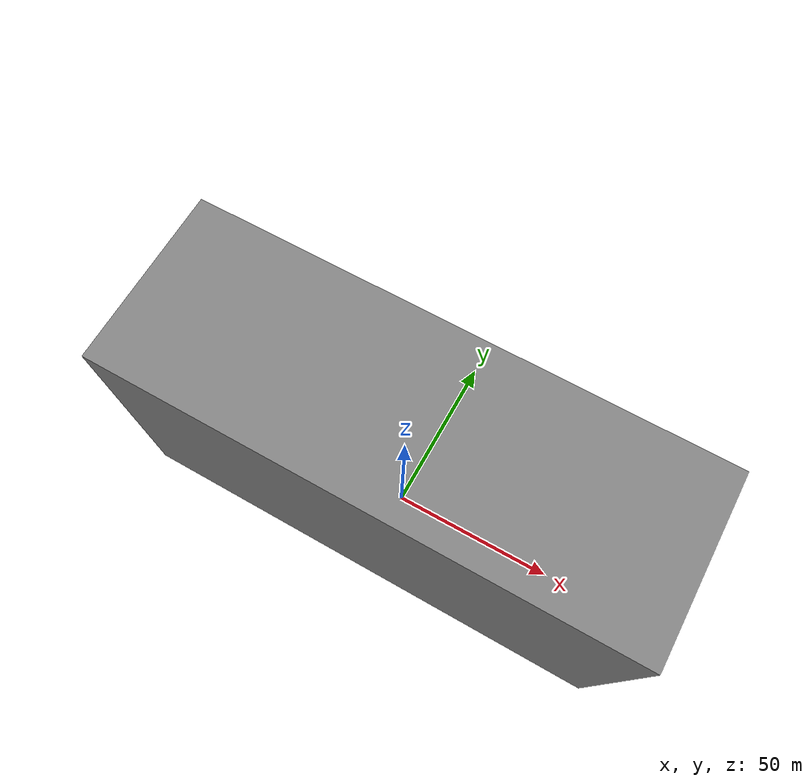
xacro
<?xml version="1.0"?>
<robot name="sun_finger_v4" xmlns:xacro="http://www.ros.org/wiki/xacro">

  <!-- Import finger macro -->
  <xacro:include filename="$(find sun_tactile_simulation)/urdf/wsg50_with_sunfinger.xacro" />

  <xacro:wsg50_with_sunfinger
    prefix=''
    base_link="base_link"
    scale="1.0"
    finger_version="v4"
    mimic_joints="true"
    create_sensor_link="true"
    create_grasp_link="true"
  />

</robot>

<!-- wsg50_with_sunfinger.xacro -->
<robot xmlns:xacro="http://www.ros.org/wiki/xacro">

<!-- include WSG50 macro -->
<xacro:include filename="$(find sun_wsg50_simulation)/urdf/wsg50.xacro" />

<xacro:macro
    name="wsg50_with_sunfinger"
    params="
        prefix:=''
        base_link:=base_link
        scale:=1.0
        finger_version:=v4
        mimic_joints:=true
        create_sensor_link:=true
        create_grasp_link:=true
        rotate_grasp_link:=false
        "
>

    <!-- prefix finger left/right -->
    <xacro:property name="prefix_finger_left" value="left/"/>
    <xacro:property name="prefix_finger_right" value="right/"/>
    <xacro:property name="finger_flange_link" value="finger_flange_link"/>
    <xacro:property name="finger_flange_left_link" value="${finger_flange_link}"/>
    <xacro:property name="finger_flange_right_link" value="${finger_flange_link}"/>
    <xacro:property name="sun_finger_link" value="sun_finger_link"/>

    <xacro:if value="${finger_version=='v3'}">
        <xacro:property name="grasp_dz" value="0.191486403"/>
    </xacro:if>
    <xacro:if value="${finger_version=='v3N'}">
        <xacro:property name="grasp_dz" value="0.1830145968018"/>
    </xacro:if>
    <xacro:if value="${finger_version=='v4'}">
        <xacro:property name="grasp_dz" value="0.183356"/>
    </xacro:if>

    <!-- wsg50 without fingers -->
    <!--
        finger_flange_left_link:=default
        finger_flange_right_link:=default
    -->
    <xacro:wsg50
        prefix="${prefix}"
        scale="${scale}"
        base_link="${base_link}"
        mimic_joints="${mimic_joints}"
        prefix_finger_left="${prefix_finger_left}"
        finger_flange_left_link="${finger_flange_left_link}"
        prefix_finger_right="${prefix_finger_right}"
        finger_flange_right_link="${finger_flange_right_link}"
    />

    <xacro:macro
        name="sun_finger_with_fixed_joint"
        params="
            prefix:=''
            parent_link:=finger_flange_link
            joint_name:=finger_flange_link-sun_finger_link
            finger_link:=sun_finger_link
            "
    >

        <!-- fixed joint for the sun finger -->
        <joint name="${prefix}${parent_link}-${finger_link}" type="fixed">
            <parent link="${prefix}${parent_link}"/>
            <child link="${prefix}${finger_link}"/>
            <origin rpy="0 0 0" xyz="${-0.008777405*scale} ${0*scale} ${0.081460829*scale}"/>
        </joint>

        <!-- Finger V3 -->
        <xacro:if value="${finger_version=='v3'}">
            <!-- Import finger macro -->
            <xacro:include filename="$(find sun_tactile_simulation)/urdf/sun_finger_v3.xacro" />
            <xacro:sun_finger_v3
                scale="${scale}"
                base_link="${finger_link}"
                prefix="${prefix}"
                create_sensor_link="${create_sensor_link}"
            />
        </xacro:if>
        <!-- Finger V3N -->
        <xacro:if value="${finger_version=='v3N'}">
            <!-- Import finger macro -->
            <xacro:include filename="$(find sun_tactile_simulation)/urdf/sun_finger_v3N.xacro" />
            <xacro:sun_finger_v3N
                scale="${scale}"
                base_link="${finger_link}"
                prefix="${prefix}"
                create_sensor_link="${create_sensor_link}"
            />
        </xacro:if>
        <!-- Finger V4 -->
        <xacro:if value="${finger_version=='v4'}">
            <!-- Import finger macro -->
            <xacro:include filename="$(find sun_tactile_simulation)/urdf/sun_finger_v4.xacro" />
            <xacro:sun_finger_v4
                scale="${scale}"
                base_link="${finger_link}"
                prefix="${prefix}"
                create_sensor_link="${create_sensor_link}"
            />
        </xacro:if>

    </xacro:macro> <!-- end macro sun_finger_with_fixed_joint -->

    <xacro:sun_finger_with_fixed_joint
        prefix="${prefix}${prefix_finger_left}"
        parent_link="${finger_flange_left_link}"
        joint_name="${finger_flange_left_link}-${sun_finger_link}"
        finger_link="${sun_finger_link}"
    />

    <xacro:sun_finger_with_fixed_joint
        prefix="${prefix}${prefix_finger_right}"
        parent_link="${finger_flange_right_link}"
        joint_name="${finger_flange_right_link}-${sun_finger_link}"
        finger_link="${sun_finger_link}"
    />

    <!-- grasp frame -->
    <xacro:property name="delta_rpy_y" value="0"/>
    <xacro:if value="${rotate_grasp_link}">
        <xacro:property name="delta_rpy_y" value="${pi}"/>
    </xacro:if>
    <xacro:if value="${create_grasp_link}">
        <link name="${prefix}grasp_frame" />
        <joint name="${prefix}${base_link}-grasp_frame" type="fixed">
            <parent link="${prefix}${base_link}" />
            <child link="${prefix}grasp_frame" />
            <origin xyz="0 0 ${grasp_dz*scale}" rpy="${pi/2} 0 ${pi/2+delta_rpy_y}" />
        </joint>
    </xacro:if>

</xacro:macro> <!-- end wsg50_with_finger -->

</robot>

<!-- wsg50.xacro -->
<robot xmlns:xacro="http://www.ros.org/wiki/xacro">

<!-- Import finger flange macros -->
<xacro:include filename="$(find sun_wsg50_simulation)/urdf/finger_flange.xacro" />

<xacro:macro
    name="wsg50"
    params="
        prefix:=''
        scale:=1.0
        base_link:=base_link
        mimic_joints:=true
        prefix_finger_left:=left/
        finger_flange_left_link:=finger_flange_link
        prefix_finger_right:=right/
        finger_flange_right_link:=finger_flange_link
        "
>

    <!-- cad_scale to convert from cad to [m] -->
    <xacro:property name="cad_scale" value="1.0"/>
    <!-- local_scale cad to input scale -->
    <xacro:property name="local_scale" value="${cad_scale*scale}"/>
    <xacro:property name="local_scale_collision" value="${0.001*scale}"/>
    <!-- origin of mesh wrt link frame -->
    <xacro:property name="wsg50_110_mesh_origin">
        <origin
            xyz="${0.0*local_scale} ${0.0*local_scale} ${0.0*local_scale}"
            rpy="${0.0} ${0.0} ${0.0}"
        />
    </xacro:property>

    <!-- WSG50 base_link of the gripper -->
    <link name="${prefix}${base_link}">
        <visual>
            <xacro:insert_block name="wsg50_110_mesh_origin" />
            <geometry>
                <mesh
                    filename="package://sun_wsg50_simulation/meshes/visual/WSG50_110.stl"
                    scale="${local_scale} ${local_scale} ${local_scale}"
                />
            </geometry>
            <material name="gray">
                <color rgba="0.5 0.5 0.5 1"/>
            </material>
        </visual>
        <collision>
            <xacro:insert_block name="wsg50_110_mesh_origin" />
            <geometry>
                <mesh
                    filename="package://sun_wsg50_simulation/meshes/collision/WSG50_110.stl"
                    scale="${local_scale_collision} ${local_scale_collision} ${local_scale_collision}"
                />
            </geometry>
        </collision>
    </link> <!-- end wsg50 base link -->

    <!-- check if I must mimic the joints -->
    <xacro:if value="${mimic_joints}">
        <!-- mimic the joints -> create a fake 1dof joint -->
        <xacro:wsg50_1dof_joint
            prefix="${prefix}"
            scale="${scale}"
            joint_name="gripper_joint"
            parent_link="${prefix}${base_link}"
        />
        <!-- prepare the property joint_to_mimic for finger flange macro -->
        <xacro:property name="joint_to_mimic" value="${prefix}gripper_joint"/>
    </xacro:if>
    <xacro:unless value="${mimic_joints}">
        <xacro:property name="joint_to_mimic" value="''"/>
    </xacro:unless>

    <!-- finger flange + link (left) -->
        <!--
            joint_name=default
            limit_sign=default
            mimic_multipler=default
        -->
    <xacro:wsg50_finger_flange_with_joint
        prefix="${prefix}${prefix_finger_left}"
        scale="${scale}"
        parent_link="${prefix}${base_link}"
        joint_to_mimic="${joint_to_mimic}"
        finger_flange_link="${finger_flange_left_link}"
    >
        <origin xyz="0 0 0" rpy="0 0 0"/>
    </xacro:wsg50_finger_flange_with_joint>

    <!-- finger flange + link (right) -->
        <!--
            joint_name=default
            limit_sign=default
            mimic_multipler=default
        -->
    <xacro:wsg50_finger_flange_with_joint
        prefix="${prefix}${prefix_finger_right}"
        scale="${scale}"
        parent_link="${prefix}${base_link}"
        joint_to_mimic="${joint_to_mimic}"
        finger_flange_link="${finger_flange_right_link}"
    >
        <origin xyz="0 0 0" rpy="0 0 ${pi}"/>
    </xacro:wsg50_finger_flange_with_joint>

</xacro:macro> <!-- end macro wsg50 -->

</robot>

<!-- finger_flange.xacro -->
<robot xmlns:xacro="http://www.ros.org/wiki/xacro">

<xacro:property name="finger_joint_limit_lower" value="0.0"/>
<xacro:property name="finger_joint_limit_upper" value="0.110"/>

<xacro:macro
    name="wsg50_finger_flange"
    params="
        base_link:=base_link
        scale:=1.0
        prefix:=''
        "
>

    <!-- cad_scale to convert from cad to [m] -->
    <xacro:property name="cad_scale" value="0.001"/>
    <!-- local_scale cad to input scale -->
    <xacro:property name="local_scale" value="${cad_scale*scale}"/>
    <!-- origin of mesh wrt link frame -->
    <xacro:property name="wsg50_finger_flange_mesh_origin">
        <origin
            xyz="${0.0*local_scale} ${0.0*local_scale} ${0.0*local_scale}"
            rpy="${0.0} ${0.0} ${0.0}"
        />
    </xacro:property>

    <!-- finger flange link -->
    <link name="${prefix}${base_link}">
        <visual>
            <xacro:insert_block name="wsg50_finger_flange_mesh_origin" />
            <geometry>
                <mesh
                    filename="package://sun_wsg50_simulation/meshes/visual/GUIDE_WSG50_110.stl"
                    scale="${local_scale} ${local_scale} ${local_scale}"
                />
            </geometry>
            <material name="black">
                <color rgba="0 0 0 1"/>
            </material>
        </visual>
        <collision>
            <xacro:insert_block name="wsg50_finger_flange_mesh_origin" />
            <geometry>
                <mesh
                    filename="package://sun_wsg50_simulation/meshes/collision/GUIDE_WSG50_110.stl"
                    scale="${local_scale} ${local_scale} ${local_scale}"
                />
            </geometry>
        </collision>
    </link>

</xacro:macro> <!-- end macro finger flange link -->

<xacro:macro
    name="wsg50_finger_flange_with_joint"
    params="
        prefix:=''
        scale:=1.0
        joint_name:=finger_flange_joint
        parent_link:=wsg50/base_link
        finger_flange_link:=finger_flange_link
        joint_to_mimic:=''
        mimic_multipler:=0.5
        limit_sign:=1.0
        *link_origin
        "
>

    <!-- Prismatic joint -->
    <joint name="${prefix}${joint_name}" type="prismatic">
        <parent link="${parent_link}"/>
        <child link="${prefix}${finger_flange_link}"/>
        <xacro:insert_block name="link_origin" />
        <axis xyz="-1 0 0"/>
        <limit
            lower="${limit_sign*(finger_joint_limit_lower/2)*scale}"
            upper="${limit_sign*(finger_joint_limit_upper/2)*scale}"
            effort="1.0" velocity="1.0"
        />
        <xacro:unless value="${joint_to_mimic==''}">
            <mimic joint="${joint_to_mimic}" multiplier="${mimic_multipler}" offset="0" />
        </xacro:unless>
    </joint>

    <!-- finger flange link -->
    <xacro:wsg50_finger_flange
        base_link="${finger_flange_link}"
        scale="${scale}"
        prefix="${prefix}"
    />

</xacro:macro> <!-- end macro finger flange + prismatic joint -->

<!-- MACRO THAT IMPLEMENTS THE REAL SINGLE JOINT OF THE GRIPPER -->
<xacro:macro
    name="wsg50_1dof_joint"
    params="
        prefix:=''
        scale:=1.0
        joint_name:=gripper_joint
        parent_link:=wsg50/base_link
        "
>

    <!-- Prismatic joint -->
    <joint name="${prefix}${joint_name}" type="prismatic">
        <parent link="${parent_link}"/>
        <child link="${prefix}${joint_name}_fake_link"/>
        <limit
            lower="${finger_joint_limit_lower*scale}"
            upper="${finger_joint_limit_upper*scale}"
            effort="1.0" velocity="1.0"
        />
    </joint>

    <!-- fake link -->
    <link name="${prefix}${joint_name}_fake_link"/>

</xacro:macro> <!-- end macro 1dof_joint -->

</robot>

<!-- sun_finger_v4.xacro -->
<robot xmlns:xacro="http://www.ros.org/wiki/xacro">

<xacro:macro
    name="sun_finger_v4"
    params="
        scale:=1.0
        base_link:=base_link
        prefix:=''
        create_sensor_link:=true
        create_sphere_link:=false
        "
>

    <!-- cad_scale to convert from cad to [m] -->
    <xacro:property name="cad_scale" value="0.001"/>
    <!-- local_scale cad to input scale -->
    <xacro:property name="local_scale" value="${cad_scale*scale}"/>
    <!-- origin of mesh wrt link frame -->
    <xacro:property name="mesh_origin">
        <!--origin xyz="${-56.9550247192*local_scale} ${-45.514275551*local_scale} ${0.00445556640625*local_scale}" rpy="${pi/2.0} ${0.0} ${pi/2}" /-->
    </xacro:property>

    <!-- finger link -->
    <link name="${prefix}${base_link}">
        <visual>
            <xacro:insert_block name="mesh_origin" />
            <geometry>
                <mesh
                    filename="package://sun_tactile_simulation/meshes/visual/sun_finger_v4.stl"
                    scale="${local_scale} ${local_scale} ${local_scale}"
                />
            </geometry>
            <material name="gray">
                <color rgba="0.4 0.4 0.4 1.0"/>
            </material>
        </visual>
        <collision>
            <xacro:insert_block name="mesh_origin" />
            <geometry>
                <mesh
                    filename="package://sun_tactile_simulation/meshes/collision/sun_finger_v4.stl"
                    scale="${local_scale} ${local_scale} ${local_scale}"
                />
            </geometry>
        </collision>
    </link> <!-- end finger link -->

    <!-- sphere frame -->
    <xacro:if value="${create_sphere_link}">
        <link name="${prefix}sphere_frame" />
        <joint name="${prefix}${base_link}-sphere_frame" type="fixed">
            <parent link="${prefix}${base_link}" />
            <child link="${prefix}sphere_frame" />
            <origin xyz="${-0.0333817*scale} 0 ${0.1018950*scale}" rpy="${pi/2} 0 ${pi/2}" />
        </joint>
    </xacro:if>

    <!-- sensor frame -->
    <xacro:if value="${create_sensor_link}">
        <link name="${prefix}sensor_frame" />
        <joint name="${prefix}${base_link}-sensor_frame" type="fixed">
            <parent link="${prefix}${base_link}" />
            <child link="${prefix}sensor_frame" />
            <origin xyz="${-scale*0.015} 0.000 ${scale*0.1018950}" rpy="${pi/2} 0 ${pi/2}" />
        </joint>
    </xacro:if>

</xacro:macro> <!-- end finger macro -->

</robot>
